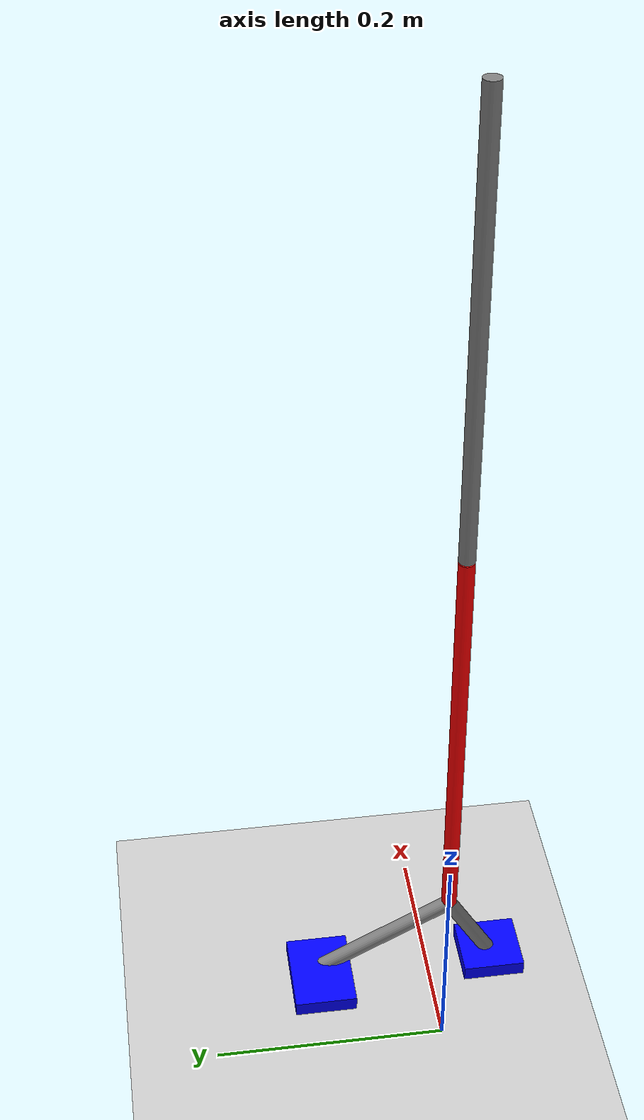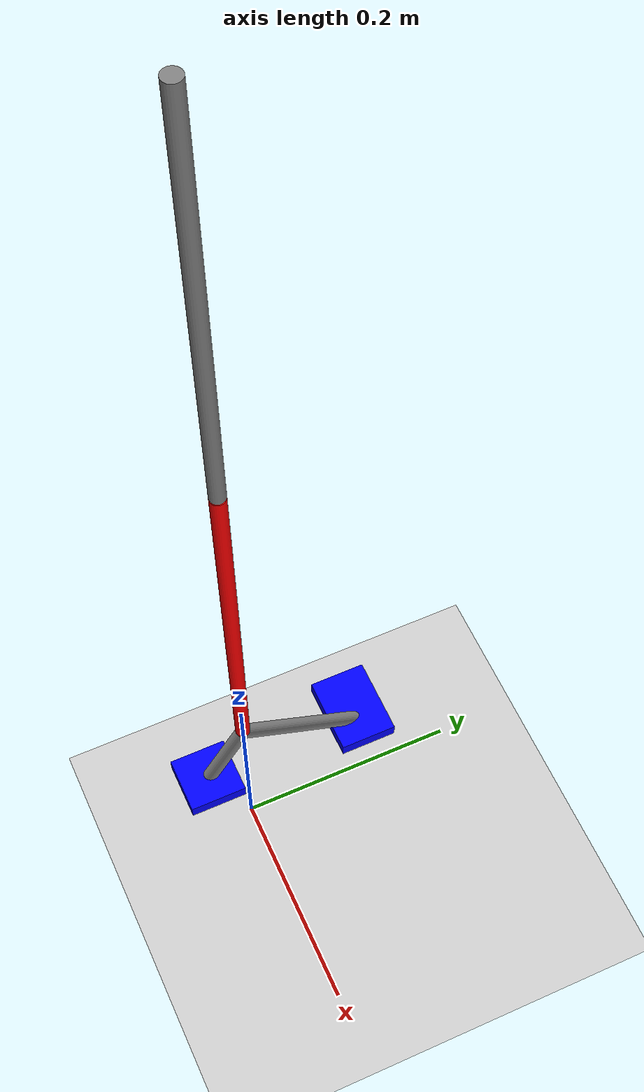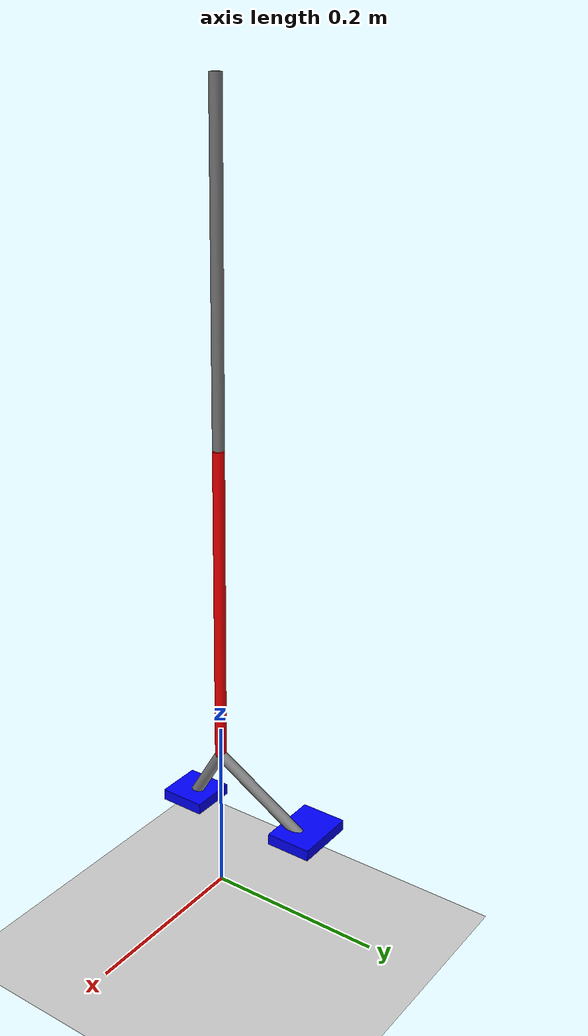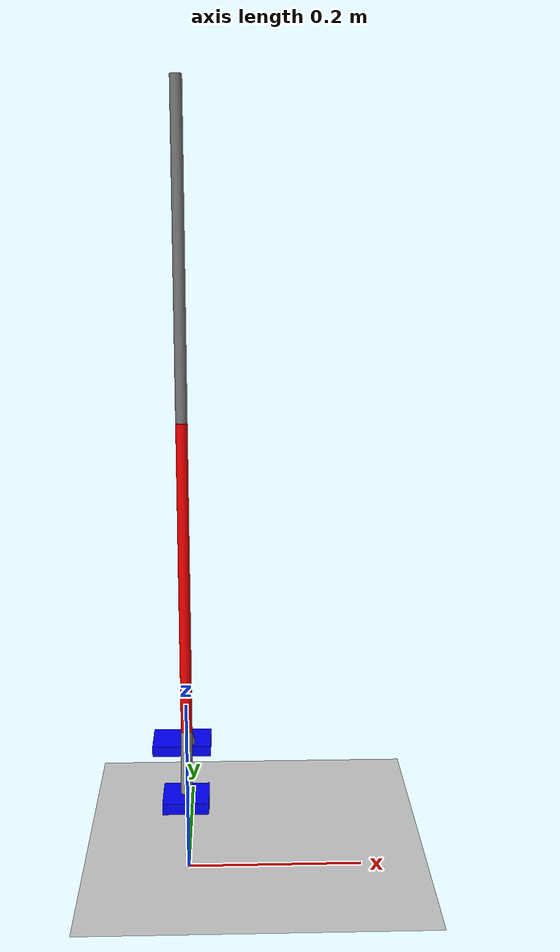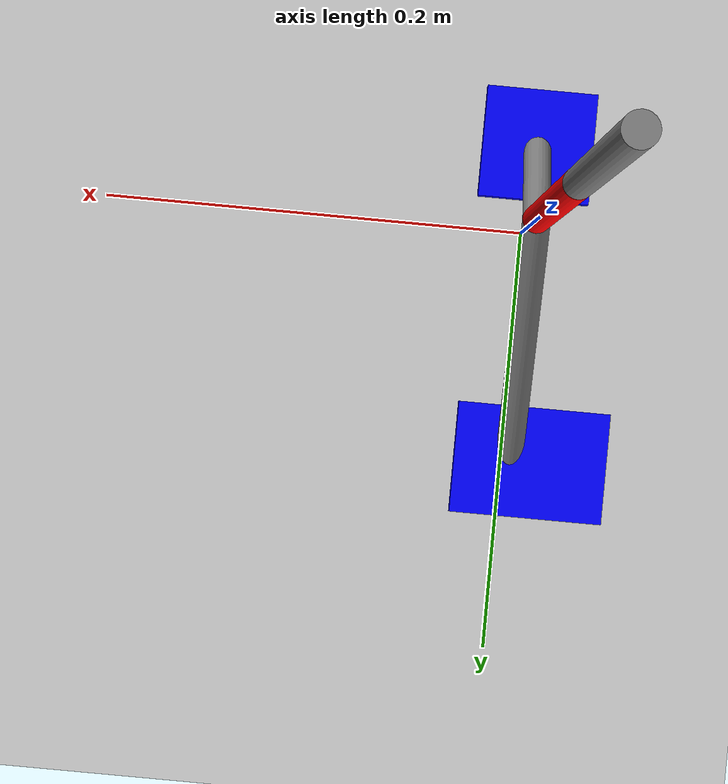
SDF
<?xml version="1.0" ?>
<sdf version="1.11">
    <world name="current_world">
        <physics name="1ms" type="ignored">
            <max_step_size>0.0006</max_step_size>
            <real_time_factor>1000.0</real_time_factor>
        </physics>
        <plugin
            filename="gz-sim-physics-system"
            name="gz::sim::systems::Physics">
        </plugin>
        <plugin
            filename="gz-sim-user-commands-system"
            name="gz::sim::systems::UserCommands">
        </plugin>
        <plugin
            filename="gz-sim-scene-broadcaster-system"
            name="gz::sim::systems::SceneBroadcaster">
        </plugin>
        <plugin
            filename="gz-sim-contact-system"
            name="gz::sim::systems::SceneBroadcaster">
        </plugin>
    <gui fullscreen="0">
    <camera name="ortho">
    	<pose>0 0 1 0 1.5708 1.5708</pose>
        <projection_type>orthographic</projection_type>
    </camera>
	<!-- 3D scene -->
	<plugin filename="MinimalScene" name="3D View">
	    <gz-gui>
		<title>3D View</title>
		<property type="bool" key="showTitleBar">false</property>
		<property type="string" key="state">docked</property>
	    </gz-gui>
	    <engine>ogre</engine>
	    <scene>scene</scene>
	    <ambient_light>0.4 0.4 0.4</ambient_light>
	    <background_color>0.8 0.8 0.8</background_color>
	</plugin>
	<!-- Plugins that add functionality to the scene -->
	<plugin filename="EntityContextMenuPlugin" name="Entity context menu">
	    <gz-gui>
		<property key="state" type="string">floating</property>
		<property key="width" type="double">5</property>
		<property key="height" type="double">5</property>
		<property key="showTitleBar" type="bool">false</property>
	    </gz-gui>
	</plugin>
	<plugin filename="GzSceneManager" name="Scene Manager">
	    <gz-gui>
		<property key="resizable" type="bool">false</property>
		<property key="width" type="double">5</property>
		<property key="height" type="double">5</property>
		<property key="state" type="string">floating</property>
		<property key="showTitleBar" type="bool">false</property>
	    </gz-gui>
	</plugin>
	<plugin filename="InteractiveViewControl" name="Interactive view control">
	    <gz-gui>
		<property key="resizable" type="bool">false</property>
		<property key="width" type="double">5</property>
		<property key="height" type="double">5</property>
		<property key="state" type="string">floating</property>
		<property key="showTitleBar" type="bool">false</property>
	    </gz-gui>
	</plugin>
	<plugin filename="MarkerManager" name="Marker manager">
	    <gz-gui>
		<property key="resizable" type="bool">false</property>
		<property key="width" type="double">5</property>
		<property key="height" type="double">5</property>
		<property key="state" type="string">floating</property>
		<property key="showTitleBar" type="bool">false</property>
	    </gz-gui>
	</plugin>
	<plugin filename="SelectEntities" name="Select Entities">
	    <gz-gui>
		<property key="resizable" type="bool">false</property>
		<property key="width" type="double">5</property>
		<property key="height" type="double">5</property>
		<property key="state" type="string">floating</property>
		<property key="showTitleBar" type="bool">false</property>
	    </gz-gui>
	</plugin>
	<plugin filename="VisualizationCapabilities" name="Visualization Capabilities">
	    <gz-gui>
		<property key="resizable" type="bool">false</property>
		<property key="width" type="double">5</property>
		<property key="height" type="double">5</property>
		<property key="state" type="string">floating</property>
		<property key="showTitleBar" type="bool">false</property>
	    </gz-gui>
	</plugin>
	<!-- World control -->
	<plugin filename="WorldControl" name="World control">
	    <gz-gui>
		<title>World control</title>
		<property type="bool" key="showTitleBar">false</property>
		<property type="bool" key="resizable">false</property>
		<property type="double" key="height">72</property>
		<property type="double" key="z">1</property>
		<property type="string" key="state">floating</property>
		<anchors target="3D View">
		    <line own="left" target="left"/>
		    <line own="bottom" target="bottom"/>
		</anchors>
	    </gz-gui>
	    <play_pause>true</play_pause>
	    <step>true</step>
	    <start_paused>true</start_paused>
	    <use_event>true</use_event>
	</plugin>
	<!-- World statistics -->
	<plugin filename="WorldStats" name="World stats">
	    <gz-gui>
		<title>World stats</title>
		<property type="bool" key="showTitleBar">false</property>
		<property type="bool" key="resizable">false</property>
		<property type="double" key="height">110</property>
		<property type="double" key="width">290</property>
		<property type="double" key="z">1</property>
		<property type="string" key="state">floating</property>
		<anchors target="3D View">
		    <line own="right" target="right"/>
		    <line own="bottom" target="bottom"/>
		</anchors>
	    </gz-gui>
	    <sim_time>true</sim_time>
	    <real_time>true</real_time>
	    <real_time_factor>true</real_time_factor>
	    <iterations>true</iterations>
	</plugin>
	<!-- Translate / rotate -->
	<plugin filename="TransformControl" name="Transform control">
	    <gz-gui>
		<property key="resizable" type="bool">false</property>
		<property key="x" type="double">0</property>
		<property key="y" type="double">50</property>
		<property key="width" type="double">250</property>
		<property key="height" type="double">50</property>
		<property key="state" type="string">floating</property>
		<property key="showTitleBar" type="bool">false</property>
		<property key="cardBackground" type="string">#777777</property>
	    </gz-gui>
	</plugin>
	<!-- Inspector -->
	<plugin filename="ComponentInspector" name="Component inspector">
	    <gz-gui>
		<property type="bool" key="showTitleBar">false</property>
		<property type="string" key="state">docked</property>
	    </gz-gui>
	</plugin>
	<!-- Entity tree -->
	<plugin filename="EntityTree" name="Entity tree">
	    <gz-gui>
		<property type="bool" key="showTitleBar">false</property>
		<property type="string" key="state">docked</property>
	    </gz-gui>
	</plugin>
      <plugin filename="MarkerManager" name="Marker manager">
        <gz-gui>
          <property key="resizable" type="bool">false</property>
          <property key="width" type="double">5</property>
          <property key="height" type="double">5</property>
          <property key="state" type="string">floating</property>
          <property key="showTitleBar" type="bool">false</property>
        </gz-gui>
      </plugin>

      <!-- Visualize Contacts -->
      <plugin filename="VisualizeContacts" name="Visualize Contacts">
        <gz-gui>
          <property key="state" type="string">docked</property>
        </gz-gui>
      </plugin>
      </gui>
	<light type="directional" name="sun">
	    <cast_shadows>false</cast_shadows>
	    <pose>0 0 10 0 0 0</pose>
	    <diffuse>0.8 0.8 0.8 1</diffuse>
	    <specular>0.2 0.2 0.2 1</specular>
	    <attenuation>
		<range>1000</range>
		<constant>0.9</constant>
		<linear>0.01</linear>
		<quadratic>0.001</quadratic>
	    </attenuation>
	    <direction>-0.5 0.1 -0.9</direction>
	</light>

<model name="modGround">
	<static>true</static>
	<link name="lnkGround">
		<collision name="collision">
			<geometry>
			    <plane>
			    <normal>0 0 1</normal>
			    </plane>
			</geometry>
		</collision>
		<visual name="visual">
			<geometry>
			    <plane>
			    <normal>0 0 1</normal>
			    <size>100 100</size>
			    </plane>
			</geometry>
		<material>
		    <ambient>0.8 0.8 0.8 1</ambient>
		    <diffuse>0.8 0.8 0.8 1</diffuse>
		    <specular>0.8 0.8 0.8 1</specular>
		</material>
		</visual>
	</link>
</model>

        <model name="modLeg">
    	<link name="lnkL">
		<pose>0 0 .7 0 0 0</pose>
		<inertial>
		  <mass>2.483</mass>
		  <inertia>
		    <ixx>0.025957</ixx>  <iyy>0.025957</iyy>
		    <izz>0.00005006</izz>
		    <ixy>0</ixy>
		    <ixz>0</ixz>
		    <iyz>0</iyz>
		  </inertia>
		</inertial>
		<visual name="visual">
		  <geometry>
		    <cylinder>
		      <radius>0.00635</radius>
		      <length>0.3540125</length>
		    </cylinder>
		  </geometry>
		  <material>
		    <ambient>0.5 0.5 0.5 1</ambient>  <diffuse>0.5 0.5 0.5 1</diffuse>
		    <specular>0.1 0.1 0.1 1</specular>
		  </material>
		</visual>
	</link>

    	<link name="lnkTibia">
		<pose relative_to="frmL">0 0 -0.178 0 0 0</pose>
		<inertial>
		  <mass>2.483</mass>
		  <inertia>
		    <ixx>0.025957</ixx>  <iyy>0.025957</iyy>
		    <izz>0.00005006</izz>
		    <ixy>0</ixy>
		    <ixz>0</ixz>
		    <iyz>0</iyz>
		  </inertia>
		</inertial>
		<visual name="visual">
		  <geometry>
		    <cylinder>
		      <radius>0.00635</radius>
		      <length>0.3540125</length>
		    </cylinder>
		  </geometry>
		  <material>
		    <ambient>1 0 0 1</ambient>  <diffuse>1 0 0 1</diffuse>
		    <specular>0.1 0.1 0.1 1</specular>
		  </material>
		</visual>
	</link>

	<link name="lnkMetatarsal">
		<pose relative_to="frmPosteriorAnkle">0 0 -0.06235 0 0 0</pose>
		<inertial>
		  <mass>.23</mass>
		  <inertia>
		    <ixx>0.000311</ixx>  <iyy>0.000311</iyy>
		    <izz>0.000005</izz>
		    <ixy>0</ixy>
		    <ixz>0</ixz>
		    <iyz>0</iyz>
		  </inertia>
		</inertial>
		<visual name="visual">
		  <geometry>
		    <cylinder>
		      <radius>0.00635</radius>
		      <length>0.12700</length>
		    </cylinder>
		  </geometry>
		  <material>
		    <ambient>0.5 0.5 0.5 1</ambient>  <diffuse>0.5 0.5 0.5 1</diffuse>
		    <specular>0.1 0.1 0.1 1</specular>
		  </material>
		</visual>
	</link>

	<link name="lnkCalcaneus">
		<pose relative_to="frmAnteriorAnkle">0 0 -0.0366617 0 0 0</pose>
		<inertial>
		  <mass>.132</mass>
		  <inertia>
		    <ixx>0.00006</ixx>  <iyy>0.00006</iyy>
		    <izz>0.000003</izz>
		    <ixy>0</ixy>
		    <ixz>0</ixz>
		    <iyz>0</iyz>
		  </inertia>
		</inertial>
		<visual name="visual">
		  <geometry>
		    <cylinder>
		      <radius>0.00635</radius>
		      <length>0.0733235</length>
		    </cylinder>
		  </geometry>
		  <material>
		    <ambient>0.5 0.5 0.5 1</ambient>  <diffuse>0.5 0.5 0.5 1</diffuse>
		    <specular>0.1 0.1 0.1 1</specular>
		  </material>
		</visual>
	</link>

	<link name="lnkHeel">
		<pose relative_to="lnkCalcaneus">0 0 -0.0366617 .523599 0 0</pose>
		<inertial>
		  <mass>.09</mass>
		  <inertia>
		    <ixx>0.000020564</ixx> <iyy>0.000020564</iyy><izz>0.00003871</izz>
		    <ixy>0</ixy>
		    <ixz>0</ixz>
		    <iyz>0</iyz>
		  </inertia>
		</inertial>
		<collision name="collision">
		  <geometry>
		    <box>
		      <size>0.0508 0.0508 0.0127</size> </box>
		  </geometry>
		   <surface>
		    <friction>
		      <ode>
			<mu>0.5</mu>
			<mu2>0.5</mu2>
		      </ode>
		    </friction>
		  </surface>
		</collision>
		<visual name="visual">
		  <geometry>
		    <box>
		      <size>0.0508 0.0508 0.0127</size>
		    </box>
		  </geometry>
		  <material>
			<ambient>0 0 1 1</ambient>
			<diffuse>0 0 1 1</diffuse>
			<specular>0.1 0.1 0.1 1</specular>
		  </material>
		</visual>
	</link>

	<link name="lnkPlantar">
		<pose relative_to="lnkMetatarsal">-0.009525 0 -0.0635 -1.0472 0 0</pose>
		<inertial>
		  <mass>.1</mass>
		  <inertia>
		    <ixx>0.00002285</ixx> <iyy>0.000042</iyy><izz>0.00006216</izz>
		    <ixy>0</ixy>
		    <ixz>0</ixz>
		    <iyz>0</iyz>
		  </inertia>
		</inertial>
		<collision name="collision">
		  <geometry>
		    <box>
		      <size>0.06985 0.0508 0.0127</size> </box>
		  </geometry>
		   <surface>
		    <friction>
		      <ode>
			<mu>0.5</mu>
			<mu2>0.5</mu2>
		      </ode>
		    </friction>
		  </surface>
		</collision>
		<visual name="visual">
		  <geometry>
		    <box>
		      <size>0.06985 0.0508 0.0127</size>
		    </box>
		  </geometry>
		  <material>
			<ambient>0 0 1 1</ambient>
			<diffuse>0 0 1 1</diffuse>
			<specular>0.1 0.1 0.1 1</specular>
		  </material>
		</visual>
	</link>

	<joint name="weld_temp1" type="fixed">
		<parent>lnkL</parent>
		<child>lnkTibia</child>
		<pose>0 0 0 0 0 0</pose>
	</joint>

	<joint name="weld1" type="fixed">
		<parent>lnkCalcaneus</parent>
		<child>lnkMetatarsal</child>
		<pose>0 0 0 0 0 0</pose>
	</joint>

	<frame name="frmL" attached_to="lnkL">
		<pose>0 0 -0.1770063  0 0 0</pose>
	</frame>

	<frame name="frmAnkle" attached_to="lnkTibia">
		<pose>0 0 -0.1770063  0 0 0</pose>
	</frame>

	<frame name="frmPosteriorAnkle" attached_to="lnkTibia">
		<pose>0 0 -0.1770063  1.0472 0 0</pose>
	</frame>

	<frame name="frmAnteriorAnkle" attached_to="lnkTibia">
		<pose>0 0 -0.1770063 -0.5236 0 0</pose>
	</frame>

	<frame name="frmHeelTop" attached_to="lnkHeel">
		<pose>0 0 0.000127 0 0 0</pose>
	</frame>

	<frame name="frmPlantarTop" attached_to="lnkPlantar">
		<pose>0 0 0.000127 0 0 0</pose>
	</frame>

	<joint name="jntAnkle" type="revolute">
		<parent>lnkTibia</parent>
		<child>lnkCalcaneus</child>
		<pose relative_to="frmPosteriorAnkle">0 0 0 0 0 0</pose>
		<axis>
		  <xyz>1 0 0</xyz>
		</axis>
	</joint>

	<joint name="jntPlantar" type="universal">
		<parent>lnkMetatarsal</parent>
		<child>lnkPlantar</child>
		<pose relative_to="frmPlantarTop">0 0 0 0 0 0</pose>
		<axis>
		  <xyz>0 1 0</xyz>
		</axis>
		<axis2>
		  <xyz>1 0 0</xyz>
		</axis2>
	</joint>

	<joint name="jntHeel" type="universal">
		<parent>lnkCalcaneus</parent>
		<child>lnkHeel</child>
		<pose relative_to="frmHeelTop">0 0 0 0 0 0</pose>
		<axis>
		  <xyz>0 1 0</xyz>
		</axis>
		<axis2>
		  <xyz>1 0 0</xyz>
		</axis2>
	</joint>

      </model>
    </world>
</sdf>
